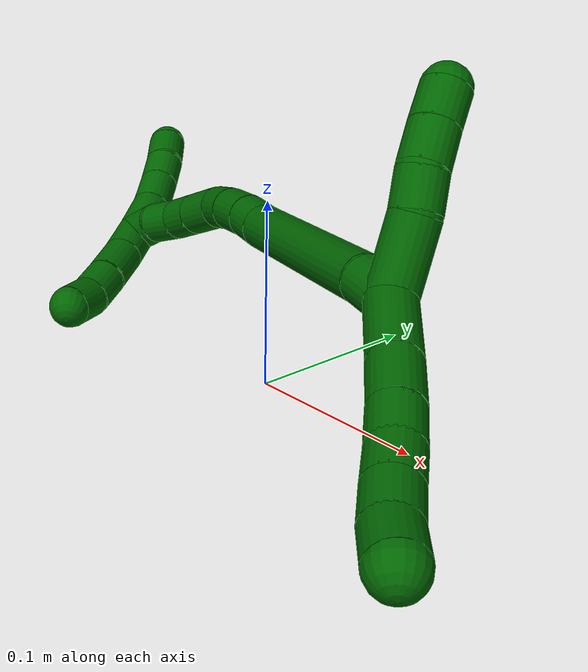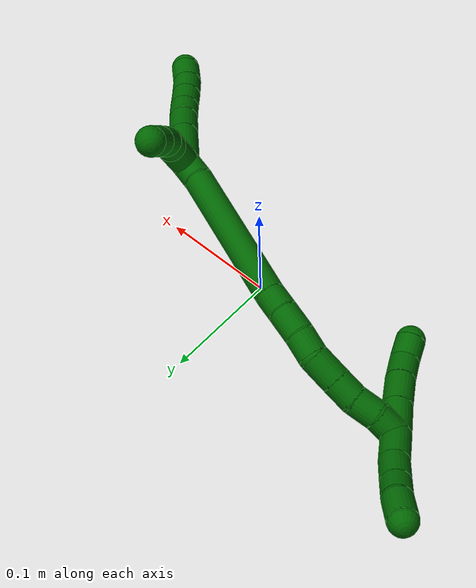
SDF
<sdf version="1.7">
 <world name="default">
  <model name="6">
   <static>0</static>
   <link name="6">
    <collision name="collision-cylinder-e_1_2_8">
     <pose>0.002742 -0.002495 -0.02107 3.02372 0.128517 1.65732</pose>
     <geometry><cylinder><radius>0.0125</radius><length>0.042788</length></cylinder></geometry>
     <surface>
      <friction><ode><mu>1.16</mu><mu2>1.16</mu2><slip1>0</slip1><slip2>0</slip2></ode></friction>
      <contact><ode><kp>1e+06</kp><kd>1</kd><max_vel>0</max_vel><min_depth>0.001</min_depth></ode></contact>
     </surface>
    </collision>
    <visual name="visual-cylinder-e_1_2_8">
     <pose>0.002742 -0.002495 -0.02107 3.02372 0.128517 1.65732</pose>
     <geometry><cylinder><radius>0.0125</radius><length>0.042788</length></cylinder></geometry>
     <material><ambient>0 0.392157 0.003922 1</ambient></material>
    </visual>
    <collision name="collision-cylinder-e_2_8_9">
     <pose>0.006854 -0.006591 -0.055338 3.02093 0.10272 1.41014</pose>
     <geometry><cylinder><radius>0.0125</radius><length>0.026729</length></cylinder></geometry>
     <surface>
      <friction><ode><mu>1.16</mu><mu2>1.16</mu2><slip1>0</slip1><slip2>0</slip2></ode></friction>
      <contact><ode><kp>1e+06</kp><kd>1</kd><max_vel>0</max_vel><min_depth>0.001</min_depth></ode></contact>
     </surface>
    </collision>
    <visual name="visual-cylinder-e_2_8_9">
     <pose>0.006854 -0.006591 -0.055338 3.02093 0.10272 1.41014</pose>
     <geometry><cylinder><radius>0.0125</radius><length>0.026729</length></cylinder></geometry>
     <material><ambient>0 0.392157 0.003922 1</ambient></material>
    </visual>
    <collision name="collision-cylinder-e_3_9_10">
     <pose>0.008783 -0.009473 -0.078672 3.01574 0.054625 0.818242</pose>
     <geometry><cylinder><radius>0.0125</radius><length>0.020465</length></cylinder></geometry>
     <surface>
      <friction><ode><mu>1.16</mu><mu2>1.16</mu2><slip1>0</slip1><slip2>0</slip2></ode></friction>
      <contact><ode><kp>1e+06</kp><kd>1</kd><max_vel>0</max_vel><min_depth>0.001</min_depth></ode></contact>
     </surface>
    </collision>
    <visual name="visual-cylinder-e_3_9_10">
     <pose>0.008783 -0.009473 -0.078672 3.01574 0.054625 0.818242</pose>
     <geometry><cylinder><radius>0.0125</radius><length>0.020465</length></cylinder></geometry>
     <material><ambient>0 0.392157 0.003922 1</ambient></material>
    </visual>
    <collision name="collision-cylinder-e_4_10_11">
     <pose>0.010167 -0.012862 -0.098552 2.92868 0.082587 0.737877</pose>
     <geometry><cylinder><radius>0.0125</radius><length>0.020005</length></cylinder></geometry>
     <surface>
      <friction><ode><mu>1.16</mu><mu2>1.16</mu2><slip1>0</slip1><slip2>0</slip2></ode></friction>
      <contact><ode><kp>1e+06</kp><kd>1</kd><max_vel>0</max_vel><min_depth>0.001</min_depth></ode></contact>
     </surface>
    </collision>
    <visual name="visual-cylinder-e_4_10_11">
     <pose>0.010167 -0.012862 -0.098552 2.92868 0.082587 0.737877</pose>
     <geometry><cylinder><radius>0.0125</radius><length>0.020005</length></cylinder></geometry>
     <material><ambient>0 0.392157 0.003922 1</ambient></material>
    </visual>
    <collision name="collision-cylinder-e_5_11_12">
     <pose>0.012119 -0.017 -0.118026 2.93575 0.112881 1.00112</pose>
     <geometry><cylinder><radius>0.0125</radius><length>0.020009</length></cylinder></geometry>
     <surface>
      <friction><ode><mu>1.16</mu><mu2>1.16</mu2><slip1>0</slip1><slip2>0</slip2></ode></friction>
      <contact><ode><kp>1e+06</kp><kd>1</kd><max_vel>0</max_vel><min_depth>0.001</min_depth></ode></contact>
     </surface>
    </collision>
    <visual name="visual-cylinder-e_5_11_12">
     <pose>0.012119 -0.017 -0.118026 2.93575 0.112881 1.00112</pose>
     <geometry><cylinder><radius>0.0125</radius><length>0.020009</length></cylinder></geometry>
     <material><ambient>0 0.392157 0.003922 1</ambient></material>
    </visual>
    <collision name="collision-cylinder-e_6_12_6">
     <pose>0.01611 -0.021164 -0.1371 2.91731 0.290356 1.82892</pose>
     <geometry><cylinder><radius>0.0125</radius><length>0.020004</length></cylinder></geometry>
     <surface>
      <friction><ode><mu>1.16</mu><mu2>1.16</mu2><slip1>0</slip1><slip2>0</slip2></ode></friction>
      <contact><ode><kp>1e+06</kp><kd>1</kd><max_vel>0</max_vel><min_depth>0.001</min_depth></ode></contact>
     </surface>
    </collision>
    <visual name="visual-cylinder-e_6_12_6">
     <pose>0.01611 -0.021164 -0.1371 2.91731 0.290356 1.82892</pose>
     <geometry><cylinder><radius>0.0125</radius><length>0.020004</length></cylinder></geometry>
     <material><ambient>0 0.392157 0.003922 1</ambient></material>
    </visual>
    <collision name="collision-cylinder-e_1_2_13">
     <pose>0.01276 -0.005593 0.013138 0.402502 0.729291 0.155436</pose>
     <geometry><cylinder><radius>0.0125</radius><length>0.038299</length></cylinder></geometry>
     <surface>
      <friction><ode><mu>1.16</mu><mu2>1.16</mu2><slip1>0</slip1><slip2>0</slip2></ode></friction>
      <contact><ode><kp>1e+06</kp><kd>1</kd><max_vel>0</max_vel><min_depth>0.001</min_depth></ode></contact>
     </surface>
    </collision>
    <visual name="visual-cylinder-e_1_2_13">
     <pose>0.01276 -0.005593 0.013138 0.402502 0.729291 0.155436</pose>
     <geometry><cylinder><radius>0.0125</radius><length>0.038299</length></cylinder></geometry>
     <material><ambient>0 0.392157 0.003922 1</ambient></material>
    </visual>
    <collision name="collision-cylinder-e_2_13_14">
     <pose>0.030705 -0.014249 0.034273 0.365672 0.544388 0.103128</pose>
     <geometry><cylinder><radius>0.0125</radius><length>0.020021</length></cylinder></geometry>
     <surface>
      <friction><ode><mu>1.16</mu><mu2>1.16</mu2><slip1>0</slip1><slip2>0</slip2></ode></friction>
      <contact><ode><kp>1e+06</kp><kd>1</kd><max_vel>0</max_vel><min_depth>0.001</min_depth></ode></contact>
     </surface>
    </collision>
    <visual name="visual-cylinder-e_2_13_14">
     <pose>0.030705 -0.014249 0.034273 0.365672 0.544388 0.103128</pose>
     <geometry><cylinder><radius>0.0125</radius><length>0.020021</length></cylinder></geometry>
     <material><ambient>0 0.392157 0.003922 1</ambient></material>
    </visual>
    <collision name="collision-cylinder-e_3_14_15">
     <pose>0.040821 -0.018489 0.051731 0.123848 0.477402 0.030174</pose>
     <geometry><cylinder><radius>0.0125</radius><length>0.021469</length></cylinder></geometry>
     <surface>
      <friction><ode><mu>1.16</mu><mu2>1.16</mu2><slip1>0</slip1><slip2>0</slip2></ode></friction>
      <contact><ode><kp>1e+06</kp><kd>1</kd><max_vel>0</max_vel><min_depth>0.001</min_depth></ode></contact>
     </surface>
    </collision>
    <visual name="visual-cylinder-e_3_14_15">
     <pose>0.040821 -0.018489 0.051731 0.123848 0.477402 0.030174</pose>
     <geometry><cylinder><radius>0.0125</radius><length>0.021469</length></cylinder></geometry>
     <material><ambient>0 0.392157 0.003922 1</ambient></material>
    </visual>
    <collision name="collision-cylinder-e_4_15_5">
     <pose>0.05045 -0.020347 0.070115 0.076163 0.483311 0.018781</pose>
     <geometry><cylinder><radius>0.0125</radius><length>0.02021</length></cylinder></geometry>
     <surface>
      <friction><ode><mu>1.16</mu><mu2>1.16</mu2><slip1>0</slip1><slip2>0</slip2></ode></friction>
      <contact><ode><kp>1e+06</kp><kd>1</kd><max_vel>0</max_vel><min_depth>0.001</min_depth></ode></contact>
     </surface>
    </collision>
    <visual name="visual-cylinder-e_4_15_5">
     <pose>0.05045 -0.020347 0.070115 0.076163 0.483311 0.018781</pose>
     <geometry><cylinder><radius>0.0125</radius><length>0.02021</length></cylinder></geometry>
     <material><ambient>0 0.392157 0.003922 1</ambient></material>
    </visual>
    <collision name="collision-cylinder-e_1_2_16">
     <pose>-0.00658 -0.001155 0.00954 0.120466 -0.600379 -0.03733</pose>
     <geometry><cylinder><radius>0.0125</radius><length>0.023293</length></cylinder></geometry>
     <surface>
      <friction><ode><mu>1.16</mu><mu2>1.16</mu2><slip1>0</slip1><slip2>0</slip2></ode></friction>
      <contact><ode><kp>1e+06</kp><kd>1</kd><max_vel>0</max_vel><min_depth>0.001</min_depth></ode></contact>
     </surface>
    </collision>
    <visual name="visual-cylinder-e_1_2_16">
     <pose>-0.00658 -0.001155 0.00954 0.120466 -0.600379 -0.03733</pose>
     <geometry><cylinder><radius>0.0125</radius><length>0.023293</length></cylinder></geometry>
     <material><ambient>0 0.392157 0.003922 1</ambient></material>
    </visual>
    <collision name="collision-cylinder-e_2_16_17">
     <pose>-0.05263 -0.000113 0.066826 -0.04597 -0.690283 0.01653</pose>
     <geometry><cylinder><radius>0.0125</radius><length>0.123975</length></cylinder></geometry>
     <surface>
      <friction><ode><mu>1.16</mu><mu2>1.16</mu2><slip1>0</slip1><slip2>0</slip2></ode></friction>
      <contact><ode><kp>1e+06</kp><kd>1</kd><max_vel>0</max_vel><min_depth>0.001</min_depth></ode></contact>
     </surface>
    </collision>
    <visual name="visual-cylinder-e_2_16_17">
     <pose>-0.05263 -0.000113 0.066826 -0.04597 -0.690283 0.01653</pose>
     <geometry><cylinder><radius>0.0125</radius><length>0.123975</length></cylinder></geometry>
     <material><ambient>0 0.392157 0.003922 1</ambient></material>
    </visual>
    <collision name="collision-cylinder-e_3_17_18">
     <pose>-0.098012 0.001461 0.12266 0.076805 -0.629743 -0.025027</pose>
     <geometry><cylinder><radius>0.0125</radius><length>0.020074</length></cylinder></geometry>
     <surface>
      <friction><ode><mu>1.16</mu><mu2>1.16</mu2><slip1>0</slip1><slip2>0</slip2></ode></friction>
      <contact><ode><kp>1e+06</kp><kd>1</kd><max_vel>0</max_vel><min_depth>0.001</min_depth></ode></contact>
     </surface>
    </collision>
    <visual name="visual-cylinder-e_3_17_18">
     <pose>-0.098012 0.001461 0.12266 0.076805 -0.629743 -0.025027</pose>
     <geometry><cylinder><radius>0.0125</radius><length>0.020074</length></cylinder></geometry>
     <material><ambient>0 0.392157 0.003922 1</ambient></material>
    </visual>
    <collision name="collision-cylinder-e_4_18_19">
     <pose>-0.111905 0.000592 0.139711 0.027497 -0.727279 -0.010465</pose>
     <geometry><cylinder><radius>0.0125</radius><length>0.024009</length></cylinder></geometry>
     <surface>
      <friction><ode><mu>1.16</mu><mu2>1.16</mu2><slip1>0</slip1><slip2>0</slip2></ode></friction>
      <contact><ode><kp>1e+06</kp><kd>1</kd><max_vel>0</max_vel><min_depth>0.001</min_depth></ode></contact>
     </surface>
    </collision>
    <visual name="visual-cylinder-e_4_18_19">
     <pose>-0.111905 0.000592 0.139711 0.027497 -0.727279 -0.010465</pose>
     <geometry><cylinder><radius>0.0125</radius><length>0.024009</length></cylinder></geometry>
     <material><ambient>0 0.392157 0.003922 1</ambient></material>
    </visual>
    <collision name="collision-cylinder-e_5_19_20">
     <pose>-0.127324 0.001174 0.155779 -0.11615 -0.805072 0.049501</pose>
     <geometry><cylinder><radius>0.0125</radius><length>0.020637</length></cylinder></geometry>
     <surface>
      <friction><ode><mu>1.16</mu><mu2>1.16</mu2><slip1>0</slip1><slip2>0</slip2></ode></friction>
      <contact><ode><kp>1e+06</kp><kd>1</kd><max_vel>0</max_vel><min_depth>0.001</min_depth></ode></contact>
     </surface>
    </collision>
    <visual name="visual-cylinder-e_5_19_20">
     <pose>-0.127324 0.001174 0.155779 -0.11615 -0.805072 0.049501</pose>
     <geometry><cylinder><radius>0.0125</radius><length>0.020637</length></cylinder></geometry>
     <material><ambient>0 0.392157 0.003922 1</ambient></material>
    </visual>
    <collision name="collision-cylinder-e_6_20_21">
     <pose>-0.14613 0.00182 0.168277 0.033956 -1.12746 -0.021467</pose>
     <geometry><cylinder><radius>0.0125</radius><length>0.025168</length></cylinder></geometry>
     <surface>
      <friction><ode><mu>1.16</mu><mu2>1.16</mu2><slip1>0</slip1><slip2>0</slip2></ode></friction>
      <contact><ode><kp>1e+06</kp><kd>1</kd><max_vel>0</max_vel><min_depth>0.001</min_depth></ode></contact>
     </surface>
    </collision>
    <visual name="visual-cylinder-e_6_20_21">
     <pose>-0.14613 0.00182 0.168277 0.033956 -1.12746 -0.021467</pose>
     <geometry><cylinder><radius>0.0125</radius><length>0.025168</length></cylinder></geometry>
     <material><ambient>0 0.392157 0.003922 1</ambient></material>
    </visual>
    <collision name="collision-cylinder-e_7_21_22">
     <pose>-0.16667 0.00141 0.17794 0.052933 -1.13474 -0.033737</pose>
     <geometry><cylinder><radius>0.0125</radius><length>0.02024</length></cylinder></geometry>
     <surface>
      <friction><ode><mu>1.16</mu><mu2>1.16</mu2><slip1>0</slip1><slip2>0</slip2></ode></friction>
      <contact><ode><kp>1e+06</kp><kd>1</kd><max_vel>0</max_vel><min_depth>0.001</min_depth></ode></contact>
     </surface>
    </collision>
    <visual name="visual-cylinder-e_7_21_22">
     <pose>-0.16667 0.00141 0.17794 0.052933 -1.13474 -0.033737</pose>
     <geometry><cylinder><radius>0.0125</radius><length>0.02024</length></cylinder></geometry>
     <material><ambient>0 0.392157 0.003922 1</ambient></material>
    </visual>
    <collision name="collision-cylinder-e_8_22_23">
     <pose>-0.18554 -0.000929 0.185862 0.524338 -1.16019 -0.348136</pose>
     <geometry><cylinder><radius>0.0125</radius><length>0.021152</length></cylinder></geometry>
     <surface>
      <friction><ode><mu>1.16</mu><mu2>1.16</mu2><slip1>0</slip1><slip2>0</slip2></ode></friction>
      <contact><ode><kp>1e+06</kp><kd>1</kd><max_vel>0</max_vel><min_depth>0.001</min_depth></ode></contact>
     </surface>
    </collision>
    <visual name="visual-cylinder-e_8_22_23">
     <pose>-0.18554 -0.000929 0.185862 0.524338 -1.16019 -0.348136</pose>
     <geometry><cylinder><radius>0.0125</radius><length>0.021152</length></cylinder></geometry>
     <material><ambient>0 0.392157 0.003922 1</ambient></material>
    </visual>
    <collision name="collision-cylinder-e_9_23_1">
     <pose>-0.205548 -0.003118 0.192471 0.025263 -1.29172 -0.019041</pose>
     <geometry><cylinder><radius>0.0125</radius><length>0.021452</length></cylinder></geometry>
     <surface>
      <friction><ode><mu>1.16</mu><mu2>1.16</mu2><slip1>0</slip1><slip2>0</slip2></ode></friction>
      <contact><ode><kp>1e+06</kp><kd>1</kd><max_vel>0</max_vel><min_depth>0.001</min_depth></ode></contact>
     </surface>
    </collision>
    <visual name="visual-cylinder-e_9_23_1">
     <pose>-0.205548 -0.003118 0.192471 0.025263 -1.29172 -0.019041</pose>
     <geometry><cylinder><radius>0.0125</radius><length>0.021452</length></cylinder></geometry>
     <material><ambient>0 0.392157 0.003922 1</ambient></material>
    </visual>
    <collision name="collision-cylinder-e_1_1_24">
     <pose>-0.2154 0.000184 0.210301 -0.22319 0.030119 -0.003375</pose>
     <geometry><cylinder><radius>0.0125</radius><length>0.030523</length></cylinder></geometry>
     <surface>
      <friction><ode><mu>1.16</mu><mu2>1.16</mu2><slip1>0</slip1><slip2>0</slip2></ode></friction>
      <contact><ode><kp>1e+06</kp><kd>1</kd><max_vel>0</max_vel><min_depth>0.001</min_depth></ode></contact>
     </surface>
    </collision>
    <visual name="visual-cylinder-e_1_1_24">
     <pose>-0.2154 0.000184 0.210301 -0.22319 0.030119 -0.003375</pose>
     <geometry><cylinder><radius>0.0125</radius><length>0.030523</length></cylinder></geometry>
     <material><ambient>0 0.392157 0.003922 1</ambient></material>
    </visual>
    <collision name="collision-cylinder-e_2_24_25">
     <pose>-0.214399 0.004622 0.237664 -0.084765 0.043189 -0.001832</pose>
     <geometry><cylinder><radius>0.0125</radius><length>0.025086</length></cylinder></geometry>
     <surface>
      <friction><ode><mu>1.16</mu><mu2>1.16</mu2><slip1>0</slip1><slip2>0</slip2></ode></friction>
      <contact><ode><kp>1e+06</kp><kd>1</kd><max_vel>0</max_vel><min_depth>0.001</min_depth></ode></contact>
     </surface>
    </collision>
    <visual name="visual-cylinder-e_2_24_25">
     <pose>-0.214399 0.004622 0.237664 -0.084765 0.043189 -0.001832</pose>
     <geometry><cylinder><radius>0.0125</radius><length>0.025086</length></cylinder></geometry>
     <material><ambient>0 0.392157 0.003922 1</ambient></material>
    </visual>
    <collision name="collision-cylinder-e_3_25_26">
     <pose>-0.212781 0.005844 0.260471 -0.015617 0.103886 -0.000812</pose>
     <geometry><cylinder><radius>0.0125</radius><length>0.020756</length></cylinder></geometry>
     <surface>
      <friction><ode><mu>1.16</mu><mu2>1.16</mu2><slip1>0</slip1><slip2>0</slip2></ode></friction>
      <contact><ode><kp>1e+06</kp><kd>1</kd><max_vel>0</max_vel><min_depth>0.001</min_depth></ode></contact>
     </surface>
    </collision>
    <visual name="visual-cylinder-e_3_25_26">
     <pose>-0.212781 0.005844 0.260471 -0.015617 0.103886 -0.000812</pose>
     <geometry><cylinder><radius>0.0125</radius><length>0.020756</length></cylinder></geometry>
     <material><ambient>0 0.392157 0.003922 1</ambient></material>
    </visual>
    <collision name="collision-cylinder-e_4_26_4">
     <pose>-0.212657 0.006422 0.282563 -0.035364 -0.080712 0.001428</pose>
     <geometry><cylinder><radius>0.0125</radius><length>0.023634</length></cylinder></geometry>
     <surface>
      <friction><ode><mu>1.16</mu><mu2>1.16</mu2><slip1>0</slip1><slip2>0</slip2></ode></friction>
      <contact><ode><kp>1e+06</kp><kd>1</kd><max_vel>0</max_vel><min_depth>0.001</min_depth></ode></contact>
     </surface>
    </collision>
    <visual name="visual-cylinder-e_4_26_4">
     <pose>-0.212657 0.006422 0.282563 -0.035364 -0.080712 0.001428</pose>
     <geometry><cylinder><radius>0.0125</radius><length>0.023634</length></cylinder></geometry>
     <material><ambient>0 0.392157 0.003922 1</ambient></material>
    </visual>
    <collision name="collision-cylinder-e_1_1_27">
     <pose>-0.215236 -0.007292 0.181286 2.85937 0.042306 0.29569</pose>
     <geometry><cylinder><radius>0.0125</radius><length>0.029468</length></cylinder></geometry>
     <surface>
      <friction><ode><mu>1.16</mu><mu2>1.16</mu2><slip1>0</slip1><slip2>0</slip2></ode></friction>
      <contact><ode><kp>1e+06</kp><kd>1</kd><max_vel>0</max_vel><min_depth>0.001</min_depth></ode></contact>
     </surface>
    </collision>
    <visual name="visual-cylinder-e_1_1_27">
     <pose>-0.215236 -0.007292 0.181286 2.85937 0.042306 0.29569</pose>
     <geometry><cylinder><radius>0.0125</radius><length>0.029468</length></cylinder></geometry>
     <material><ambient>0 0.392157 0.003922 1</ambient></material>
    </visual>
    <collision name="collision-cylinder-e_2_27_28">
     <pose>-0.214141 -0.016035 0.153813 2.80648 0.033437 0.19706</pose>
     <geometry><cylinder><radius>0.0125</radius><length>0.028255</length></cylinder></geometry>
     <surface>
      <friction><ode><mu>1.16</mu><mu2>1.16</mu2><slip1>0</slip1><slip2>0</slip2></ode></friction>
      <contact><ode><kp>1e+06</kp><kd>1</kd><max_vel>0</max_vel><min_depth>0.001</min_depth></ode></contact>
     </surface>
    </collision>
    <visual name="visual-cylinder-e_2_27_28">
     <pose>-0.214141 -0.016035 0.153813 2.80648 0.033437 0.19706</pose>
     <geometry><cylinder><radius>0.0125</radius><length>0.028255</length></cylinder></geometry>
     <material><ambient>0 0.392157 0.003922 1</ambient></material>
    </visual>
    <collision name="collision-cylinder-e_3_28_29">
     <pose>-0.214224 -0.024473 0.130286 2.78526 -0.05101 -0.281458</pose>
     <geometry><cylinder><radius>0.0125</radius><length>0.021781</length></cylinder></geometry>
     <surface>
      <friction><ode><mu>1.16</mu><mu2>1.16</mu2><slip1>0</slip1><slip2>0</slip2></ode></friction>
      <contact><ode><kp>1e+06</kp><kd>1</kd><max_vel>0</max_vel><min_depth>0.001</min_depth></ode></contact>
     </surface>
    </collision>
    <visual name="visual-cylinder-e_3_28_29">
     <pose>-0.214224 -0.024473 0.130286 2.78526 -0.05101 -0.281458</pose>
     <geometry><cylinder><radius>0.0125</radius><length>0.021781</length></cylinder></geometry>
     <material><ambient>0 0.392157 0.003922 1</ambient></material>
    </visual>
    <collision name="collision-cylinder-e_4_29_3">
     <pose>-0.214083 -0.034104 0.111699 2.53392 0.067943 0.215933</pose>
     <geometry><cylinder><radius>0.0125</radius><length>0.020495</length></cylinder></geometry>
     <surface>
      <friction><ode><mu>1.16</mu><mu2>1.16</mu2><slip1>0</slip1><slip2>0</slip2></ode></friction>
      <contact><ode><kp>1e+06</kp><kd>1</kd><max_vel>0</max_vel><min_depth>0.001</min_depth></ode></contact>
     </surface>
    </collision>
    <visual name="visual-cylinder-e_4_29_3">
     <pose>-0.214083 -0.034104 0.111699 2.53392 0.067943 0.215933</pose>
     <geometry><cylinder><radius>0.0125</radius><length>0.020495</length></cylinder></geometry>
     <material><ambient>0 0.392157 0.003922 1</ambient></material>
    </visual>
    <collision name="collision-sphere-3">
     <pose>-0.213388 -0.039942 0.103305 0 -0 0</pose>
     <geometry><sphere><radius>0.0125</radius></sphere></geometry>
     <surface>
      <friction><ode><mu>1.16</mu><mu2>1.16</mu2><slip1>0</slip1><slip2>0</slip2></ode></friction>
      <contact><ode><kp>1e+06</kp><kd>1</kd><max_vel>0</max_vel><min_depth>0.001</min_depth></ode></contact>
     </surface>
    </collision>
    <visual name="visual-sphere-3">
     <pose>-0.213388 -0.039942 0.103305 0 -0 0</pose>
     <geometry><sphere><radius>0.0125</radius></sphere></geometry>
     <material><ambient>0 0.392157 0.003922 1</ambient></material>
    </visual>
    <collision name="collision-sphere-29">
     <pose>-0.214779 -0.028267 0.120092 0 -0 0</pose>
     <geometry><sphere><radius>0.0125</radius></sphere></geometry>
     <surface>
      <friction><ode><mu>1.16</mu><mu2>1.16</mu2><slip1>0</slip1><slip2>0</slip2></ode></friction>
      <contact><ode><kp>1e+06</kp><kd>1</kd><max_vel>0</max_vel><min_depth>0.001</min_depth></ode></contact>
     </surface>
    </collision>
    <visual name="visual-sphere-29">
     <pose>-0.214779 -0.028267 0.120092 0 -0 0</pose>
     <geometry><sphere><radius>0.0125</radius></sphere></geometry>
     <material><ambient>0 0.392157 0.003922 1</ambient></material>
    </visual>
    <collision name="collision-sphere-28">
     <pose>-0.213668 -0.020679 0.140479 0 -0 0</pose>
     <geometry><sphere><radius>0.0125</radius></sphere></geometry>
     <surface>
      <friction><ode><mu>1.16</mu><mu2>1.16</mu2><slip1>0</slip1><slip2>0</slip2></ode></friction>
      <contact><ode><kp>1e+06</kp><kd>1</kd><max_vel>0</max_vel><min_depth>0.001</min_depth></ode></contact>
     </surface>
    </collision>
    <visual name="visual-sphere-28">
     <pose>-0.213668 -0.020679 0.140479 0 -0 0</pose>
     <geometry><sphere><radius>0.0125</radius></sphere></geometry>
     <material><ambient>0 0.392157 0.003922 1</ambient></material>
    </visual>
    <collision name="collision-sphere-27">
     <pose>-0.214613 -0.011391 0.167147 0 -0 0</pose>
     <geometry><sphere><radius>0.0125</radius></sphere></geometry>
     <surface>
      <friction><ode><mu>1.16</mu><mu2>1.16</mu2><slip1>0</slip1><slip2>0</slip2></ode></friction>
      <contact><ode><kp>1e+06</kp><kd>1</kd><max_vel>0</max_vel><min_depth>0.001</min_depth></ode></contact>
     </surface>
    </collision>
    <visual name="visual-sphere-27">
     <pose>-0.214613 -0.011391 0.167147 0 -0 0</pose>
     <geometry><sphere><radius>0.0125</radius></sphere></geometry>
     <material><ambient>0 0.392157 0.003922 1</ambient></material>
    </visual>
    <collision name="collision-sphere-4">
     <pose>-0.21361 0.006838 0.294334 0 -0 0</pose>
     <geometry><sphere><radius>0.0125</radius></sphere></geometry>
     <surface>
      <friction><ode><mu>1.16</mu><mu2>1.16</mu2><slip1>0</slip1><slip2>0</slip2></ode></friction>
      <contact><ode><kp>1e+06</kp><kd>1</kd><max_vel>0</max_vel><min_depth>0.001</min_depth></ode></contact>
     </surface>
    </collision>
    <visual name="visual-sphere-4">
     <pose>-0.21361 0.006838 0.294334 0 -0 0</pose>
     <geometry><sphere><radius>0.0125</radius></sphere></geometry>
     <material><ambient>0 0.392157 0.003922 1</ambient></material>
    </visual>
    <collision name="collision-sphere-26">
     <pose>-0.211705 0.006005 0.270792 0 -0 0</pose>
     <geometry><sphere><radius>0.0125</radius></sphere></geometry>
     <surface>
      <friction><ode><mu>1.16</mu><mu2>1.16</mu2><slip1>0</slip1><slip2>0</slip2></ode></friction>
      <contact><ode><kp>1e+06</kp><kd>1</kd><max_vel>0</max_vel><min_depth>0.001</min_depth></ode></contact>
     </surface>
    </collision>
    <visual name="visual-sphere-26">
     <pose>-0.211705 0.006005 0.270792 0 -0 0</pose>
     <geometry><sphere><radius>0.0125</radius></sphere></geometry>
     <material><ambient>0 0.392157 0.003922 1</ambient></material>
    </visual>
    <collision name="collision-sphere-25">
     <pose>-0.213857 0.005683 0.25015 0 -0 0</pose>
     <geometry><sphere><radius>0.0125</radius></sphere></geometry>
     <surface>
      <friction><ode><mu>1.16</mu><mu2>1.16</mu2><slip1>0</slip1><slip2>0</slip2></ode></friction>
      <contact><ode><kp>1e+06</kp><kd>1</kd><max_vel>0</max_vel><min_depth>0.001</min_depth></ode></contact>
     </surface>
    </collision>
    <visual name="visual-sphere-25">
     <pose>-0.213857 0.005683 0.25015 0 -0 0</pose>
     <geometry><sphere><radius>0.0125</radius></sphere></geometry>
     <material><ambient>0 0.392157 0.003922 1</ambient></material>
    </visual>
    <collision name="collision-sphere-24">
     <pose>-0.21494 0.003561 0.225177 0 -0 0</pose>
     <geometry><sphere><radius>0.0125</radius></sphere></geometry>
     <surface>
      <friction><ode><mu>1.16</mu><mu2>1.16</mu2><slip1>0</slip1><slip2>0</slip2></ode></friction>
      <contact><ode><kp>1e+06</kp><kd>1</kd><max_vel>0</max_vel><min_depth>0.001</min_depth></ode></contact>
     </surface>
    </collision>
    <visual name="visual-sphere-24">
     <pose>-0.21494 0.003561 0.225177 0 -0 0</pose>
     <geometry><sphere><radius>0.0125</radius></sphere></geometry>
     <material><ambient>0 0.392157 0.003922 1</ambient></material>
    </visual>
    <collision name="collision-sphere-1">
     <pose>-0.215859 -0.003192 0.195424 0 -0 0</pose>
     <geometry><sphere><radius>0.0125</radius></sphere></geometry>
     <surface>
      <friction><ode><mu>1.16</mu><mu2>1.16</mu2><slip1>0</slip1><slip2>0</slip2></ode></friction>
      <contact><ode><kp>1e+06</kp><kd>1</kd><max_vel>0</max_vel><min_depth>0.001</min_depth></ode></contact>
     </surface>
    </collision>
    <visual name="visual-sphere-1">
     <pose>-0.215859 -0.003192 0.195424 0 -0 0</pose>
     <geometry><sphere><radius>0.0125</radius></sphere></geometry>
     <material><ambient>0 0.392157 0.003922 1</ambient></material>
    </visual>
    <collision name="collision-sphere-23">
     <pose>-0.195237 -0.003043 0.189517 0 -0 0</pose>
     <geometry><sphere><radius>0.0125</radius></sphere></geometry>
     <surface>
      <friction><ode><mu>1.16</mu><mu2>1.16</mu2><slip1>0</slip1><slip2>0</slip2></ode></friction>
      <contact><ode><kp>1e+06</kp><kd>1</kd><max_vel>0</max_vel><min_depth>0.001</min_depth></ode></contact>
     </surface>
    </collision>
    <visual name="visual-sphere-23">
     <pose>-0.195237 -0.003043 0.189517 0 -0 0</pose>
     <geometry><sphere><radius>0.0125</radius></sphere></geometry>
     <material><ambient>0 0.392157 0.003922 1</ambient></material>
    </visual>
    <collision name="collision-sphere-22">
     <pose>-0.175843 0.001184 0.182208 0 -0 0</pose>
     <geometry><sphere><radius>0.0125</radius></sphere></geometry>
     <surface>
      <friction><ode><mu>1.16</mu><mu2>1.16</mu2><slip1>0</slip1><slip2>0</slip2></ode></friction>
      <contact><ode><kp>1e+06</kp><kd>1</kd><max_vel>0</max_vel><min_depth>0.001</min_depth></ode></contact>
     </surface>
    </collision>
    <visual name="visual-sphere-22">
     <pose>-0.175843 0.001184 0.182208 0 -0 0</pose>
     <geometry><sphere><radius>0.0125</radius></sphere></geometry>
     <material><ambient>0 0.392157 0.003922 1</ambient></material>
    </visual>
    <collision name="collision-sphere-21">
     <pose>-0.157497 0.001636 0.173671 0 -0 0</pose>
     <geometry><sphere><radius>0.0125</radius></sphere></geometry>
     <surface>
      <friction><ode><mu>1.16</mu><mu2>1.16</mu2><slip1>0</slip1><slip2>0</slip2></ode></friction>
      <contact><ode><kp>1e+06</kp><kd>1</kd><max_vel>0</max_vel><min_depth>0.001</min_depth></ode></contact>
     </surface>
    </collision>
    <visual name="visual-sphere-21">
     <pose>-0.157497 0.001636 0.173671 0 -0 0</pose>
     <geometry><sphere><radius>0.0125</radius></sphere></geometry>
     <material><ambient>0 0.392157 0.003922 1</ambient></material>
    </visual>
    <collision name="collision-sphere-12">
     <pose>0.013246 -0.019032 -0.127756 0 -0 0</pose>
     <geometry><sphere><radius>0.0125</radius></sphere></geometry>
     <surface>
      <friction><ode><mu>1.16</mu><mu2>1.16</mu2><slip1>0</slip1><slip2>0</slip2></ode></friction>
      <contact><ode><kp>1e+06</kp><kd>1</kd><max_vel>0</max_vel><min_depth>0.001</min_depth></ode></contact>
     </surface>
    </collision>
    <visual name="visual-sphere-12">
     <pose>0.013246 -0.019032 -0.127756 0 -0 0</pose>
     <geometry><sphere><radius>0.0125</radius></sphere></geometry>
     <material><ambient>0 0.392157 0.003922 1</ambient></material>
    </visual>
    <collision name="collision-sphere-11">
     <pose>0.010992 -0.014969 -0.108295 0 -0 0</pose>
     <geometry><sphere><radius>0.0125</radius></sphere></geometry>
     <surface>
      <friction><ode><mu>1.16</mu><mu2>1.16</mu2><slip1>0</slip1><slip2>0</slip2></ode></friction>
      <contact><ode><kp>1e+06</kp><kd>1</kd><max_vel>0</max_vel><min_depth>0.001</min_depth></ode></contact>
     </surface>
    </collision>
    <visual name="visual-sphere-11">
     <pose>0.010992 -0.014969 -0.108295 0 -0 0</pose>
     <geometry><sphere><radius>0.0125</radius></sphere></geometry>
     <material><ambient>0 0.392157 0.003922 1</ambient></material>
    </visual>
    <collision name="collision-sphere-10">
     <pose>0.009342 -0.010756 -0.088808 0 -0 0</pose>
     <geometry><sphere><radius>0.0125</radius></sphere></geometry>
     <surface>
      <friction><ode><mu>1.16</mu><mu2>1.16</mu2><slip1>0</slip1><slip2>0</slip2></ode></friction>
      <contact><ode><kp>1e+06</kp><kd>1</kd><max_vel>0</max_vel><min_depth>0.001</min_depth></ode></contact>
     </surface>
    </collision>
    <visual name="visual-sphere-10">
     <pose>0.009342 -0.010756 -0.088808 0 -0 0</pose>
     <geometry><sphere><radius>0.0125</radius></sphere></geometry>
     <material><ambient>0 0.392157 0.003922 1</ambient></material>
    </visual>
    <collision name="collision-sphere-9">
     <pose>0.008225 -0.008191 -0.068536 0 -0 0</pose>
     <geometry><sphere><radius>0.0125</radius></sphere></geometry>
     <surface>
      <friction><ode><mu>1.16</mu><mu2>1.16</mu2><slip1>0</slip1><slip2>0</slip2></ode></friction>
      <contact><ode><kp>1e+06</kp><kd>1</kd><max_vel>0</max_vel><min_depth>0.001</min_depth></ode></contact>
     </surface>
    </collision>
    <visual name="visual-sphere-9">
     <pose>0.008225 -0.008191 -0.068536 0 -0 0</pose>
     <geometry><sphere><radius>0.0125</radius></sphere></geometry>
     <material><ambient>0 0.392157 0.003922 1</ambient></material>
    </visual>
    <collision name="collision-sphere-2">
     <geometry><sphere><radius>0.0125</radius></sphere></geometry>
     <surface>
      <friction><ode><mu>1.16</mu><mu2>1.16</mu2><slip1>0</slip1><slip2>0</slip2></ode></friction>
      <contact><ode><kp>1e+06</kp><kd>1</kd><max_vel>0</max_vel><min_depth>0.001</min_depth></ode></contact>
     </surface>
    </collision>
    <visual name="visual-sphere-2">
     <geometry><sphere><radius>0.0125</radius></sphere></geometry>
     <material><ambient>0 0.392157 0.003922 1</ambient></material>
    </visual>
    <collision name="collision-sphere-19">
     <pose>-0.119886 0.000345 0.148675 0 -0 0</pose>
     <geometry><sphere><radius>0.0125</radius></sphere></geometry>
     <surface>
      <friction><ode><mu>1.16</mu><mu2>1.16</mu2><slip1>0</slip1><slip2>0</slip2></ode></friction>
      <contact><ode><kp>1e+06</kp><kd>1</kd><max_vel>0</max_vel><min_depth>0.001</min_depth></ode></contact>
     </surface>
    </collision>
    <visual name="visual-sphere-19">
     <pose>-0.119886 0.000345 0.148675 0 -0 0</pose>
     <geometry><sphere><radius>0.0125</radius></sphere></geometry>
     <material><ambient>0 0.392157 0.003922 1</ambient></material>
    </visual>
    <collision name="collision-sphere-8">
     <pose>0.005484 -0.004991 -0.042141 0 -0 0</pose>
     <geometry><sphere><radius>0.0125</radius></sphere></geometry>
     <surface>
      <friction><ode><mu>1.16</mu><mu2>1.16</mu2><slip1>0</slip1><slip2>0</slip2></ode></friction>
      <contact><ode><kp>1e+06</kp><kd>1</kd><max_vel>0</max_vel><min_depth>0.001</min_depth></ode></contact>
     </surface>
    </collision>
    <visual name="visual-sphere-8">
     <pose>0.005484 -0.004991 -0.042141 0 -0 0</pose>
     <geometry><sphere><radius>0.0125</radius></sphere></geometry>
     <material><ambient>0 0.392157 0.003922 1</ambient></material>
    </visual>
    <collision name="collision-sphere-6">
     <pose>0.018973 -0.023295 -0.146443 0 -0 0</pose>
     <geometry><sphere><radius>0.0125</radius></sphere></geometry>
     <surface>
      <friction><ode><mu>1.16</mu><mu2>1.16</mu2><slip1>0</slip1><slip2>0</slip2></ode></friction>
      <contact><ode><kp>1e+06</kp><kd>1</kd><max_vel>0</max_vel><min_depth>0.001</min_depth></ode></contact>
     </surface>
    </collision>
    <visual name="visual-sphere-6">
     <pose>0.018973 -0.023295 -0.146443 0 -0 0</pose>
     <geometry><sphere><radius>0.0125</radius></sphere></geometry>
     <material><ambient>0 0.392157 0.003922 1</ambient></material>
    </visual>
    <collision name="collision-sphere-13">
     <pose>0.02552 -0.011187 0.026275 0 -0 0</pose>
     <geometry><sphere><radius>0.0125</radius></sphere></geometry>
     <surface>
      <friction><ode><mu>1.16</mu><mu2>1.16</mu2><slip1>0</slip1><slip2>0</slip2></ode></friction>
      <contact><ode><kp>1e+06</kp><kd>1</kd><max_vel>0</max_vel><min_depth>0.001</min_depth></ode></contact>
     </surface>
    </collision>
    <visual name="visual-sphere-13">
     <pose>0.02552 -0.011187 0.026275 0 -0 0</pose>
     <geometry><sphere><radius>0.0125</radius></sphere></geometry>
     <material><ambient>0 0.392157 0.003922 1</ambient></material>
    </visual>
    <collision name="collision-sphere-14">
     <pose>0.035889 -0.017311 0.04227 0 -0 0</pose>
     <geometry><sphere><radius>0.0125</radius></sphere></geometry>
     <surface>
      <friction><ode><mu>1.16</mu><mu2>1.16</mu2><slip1>0</slip1><slip2>0</slip2></ode></friction>
      <contact><ode><kp>1e+06</kp><kd>1</kd><max_vel>0</max_vel><min_depth>0.001</min_depth></ode></contact>
     </surface>
    </collision>
    <visual name="visual-sphere-14">
     <pose>0.035889 -0.017311 0.04227 0 -0 0</pose>
     <geometry><sphere><radius>0.0125</radius></sphere></geometry>
     <material><ambient>0 0.392157 0.003922 1</ambient></material>
    </visual>
    <collision name="collision-sphere-15">
     <pose>0.045754 -0.019666 0.061193 0 -0 0</pose>
     <geometry><sphere><radius>0.0125</radius></sphere></geometry>
     <surface>
      <friction><ode><mu>1.16</mu><mu2>1.16</mu2><slip1>0</slip1><slip2>0</slip2></ode></friction>
      <contact><ode><kp>1e+06</kp><kd>1</kd><max_vel>0</max_vel><min_depth>0.001</min_depth></ode></contact>
     </surface>
    </collision>
    <visual name="visual-sphere-15">
     <pose>0.045754 -0.019666 0.061193 0 -0 0</pose>
     <geometry><sphere><radius>0.0125</radius></sphere></geometry>
     <material><ambient>0 0.392157 0.003922 1</ambient></material>
    </visual>
    <collision name="collision-sphere-5">
     <pose>0.055146 -0.021028 0.079036 0 -0 0</pose>
     <geometry><sphere><radius>0.0125</radius></sphere></geometry>
     <surface>
      <friction><ode><mu>1.16</mu><mu2>1.16</mu2><slip1>0</slip1><slip2>0</slip2></ode></friction>
      <contact><ode><kp>1e+06</kp><kd>1</kd><max_vel>0</max_vel><min_depth>0.001</min_depth></ode></contact>
     </surface>
    </collision>
    <visual name="visual-sphere-5">
     <pose>0.055146 -0.021028 0.079036 0 -0 0</pose>
     <geometry><sphere><radius>0.0125</radius></sphere></geometry>
     <material><ambient>0 0.392157 0.003922 1</ambient></material>
    </visual>
    <collision name="collision-sphere-16">
     <pose>-0.013159 -0.00231 0.01908 0 -0 0</pose>
     <geometry><sphere><radius>0.0125</radius></sphere></geometry>
     <surface>
      <friction><ode><mu>1.16</mu><mu2>1.16</mu2><slip1>0</slip1><slip2>0</slip2></ode></friction>
      <contact><ode><kp>1e+06</kp><kd>1</kd><max_vel>0</max_vel><min_depth>0.001</min_depth></ode></contact>
     </surface>
    </collision>
    <visual name="visual-sphere-16">
     <pose>-0.013159 -0.00231 0.01908 0 -0 0</pose>
     <geometry><sphere><radius>0.0125</radius></sphere></geometry>
     <material><ambient>0 0.392157 0.003922 1</ambient></material>
    </visual>
    <collision name="collision-sphere-17">
     <pose>-0.092101 0.002083 0.114572 0 -0 0</pose>
     <geometry><sphere><radius>0.0125</radius></sphere></geometry>
     <surface>
      <friction><ode><mu>1.16</mu><mu2>1.16</mu2><slip1>0</slip1><slip2>0</slip2></ode></friction>
      <contact><ode><kp>1e+06</kp><kd>1</kd><max_vel>0</max_vel><min_depth>0.001</min_depth></ode></contact>
     </surface>
    </collision>
    <visual name="visual-sphere-17">
     <pose>-0.092101 0.002083 0.114572 0 -0 0</pose>
     <geometry><sphere><radius>0.0125</radius></sphere></geometry>
     <material><ambient>0 0.392157 0.003922 1</ambient></material>
    </visual>
    <collision name="collision-sphere-18">
     <pose>-0.103923 0.000838 0.130748 0 -0 0</pose>
     <geometry><sphere><radius>0.0125</radius></sphere></geometry>
     <surface>
      <friction><ode><mu>1.16</mu><mu2>1.16</mu2><slip1>0</slip1><slip2>0</slip2></ode></friction>
      <contact><ode><kp>1e+06</kp><kd>1</kd><max_vel>0</max_vel><min_depth>0.001</min_depth></ode></contact>
     </surface>
    </collision>
    <visual name="visual-sphere-18">
     <pose>-0.103923 0.000838 0.130748 0 -0 0</pose>
     <geometry><sphere><radius>0.0125</radius></sphere></geometry>
     <material><ambient>0 0.392157 0.003922 1</ambient></material>
    </visual>
    <collision name="collision-sphere-20">
     <pose>-0.134763 0.002003 0.162882 0 -0 0</pose>
     <geometry><sphere><radius>0.0125</radius></sphere></geometry>
     <surface>
      <friction><ode><mu>1.16</mu><mu2>1.16</mu2><slip1>0</slip1><slip2>0</slip2></ode></friction>
      <contact><ode><kp>1e+06</kp><kd>1</kd><max_vel>0</max_vel><min_depth>0.001</min_depth></ode></contact>
     </surface>
    </collision>
    <visual name="visual-sphere-20">
     <pose>-0.134763 0.002003 0.162882 0 -0 0</pose>
     <geometry><sphere><radius>0.0125</radius></sphere></geometry>
     <material><ambient>0 0.392157 0.003922 1</ambient></material>
    </visual>
    <inertial>
     <pose>-0.090587 -0.005728 0.087156 0 -0 0</pose>
     <mass>0.75</mass>
     <inertia><ixx>0.000172</ixx><ixy>0</ixy><ixz>0</ixz><iyy>0.0002</iyy><iyz>0</iyz><izz>0.000119</izz></inertia>
    </inertial>
   </link>
   <pose>0.096213 -0.013517 0.07982 -0.9569 -0.70276 0.367322</pose>
  </model>
 </world>
</sdf>
